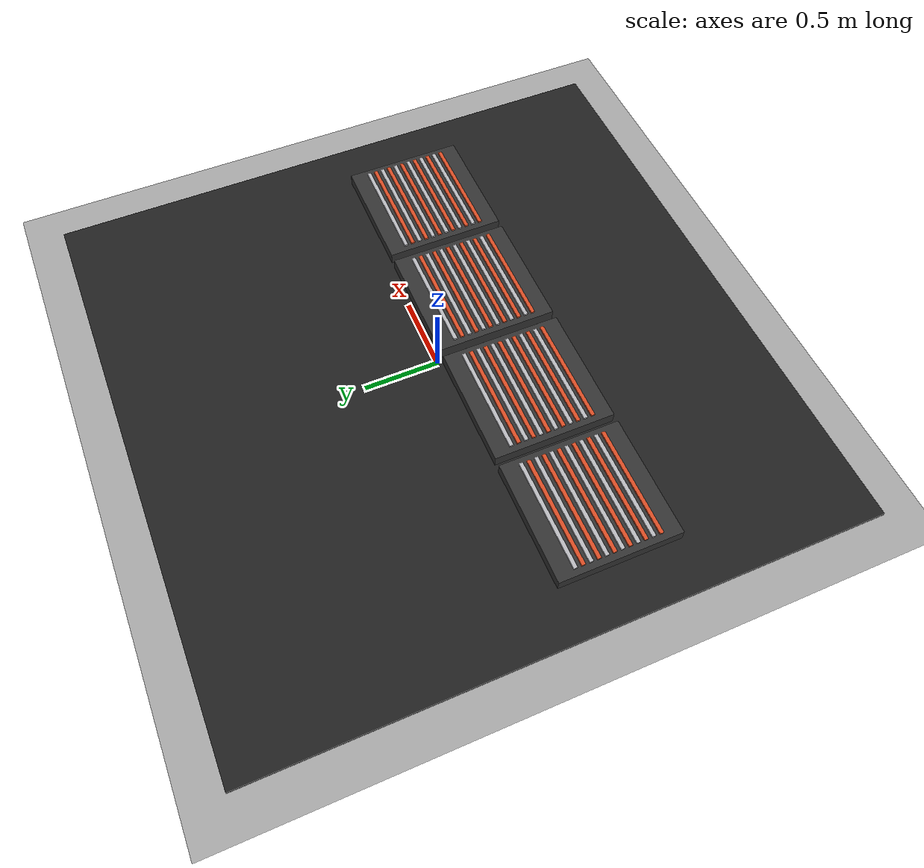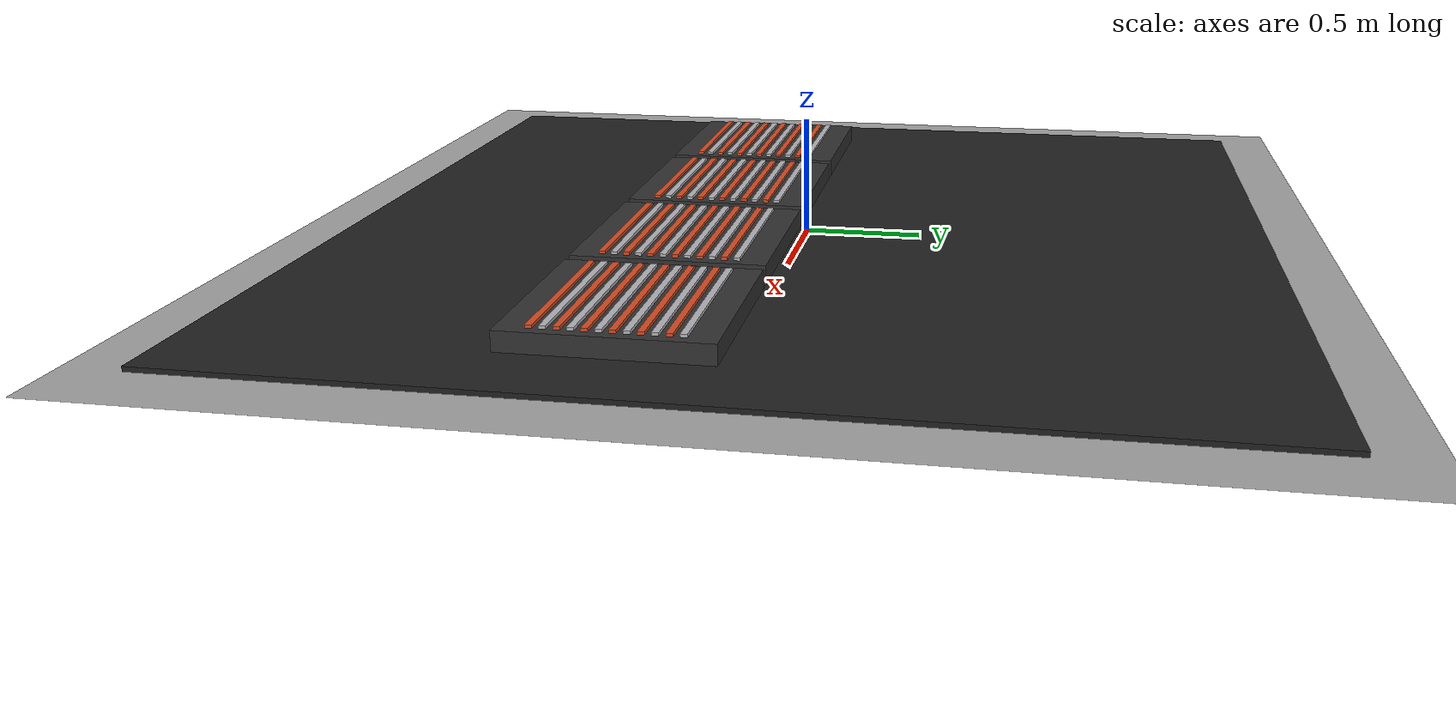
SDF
<sdf version="1.9">
 <world name="electrolysis_8_baths_world">
  <model name="ground_plane">
   <static>true</static>
   <link name="link">
    <collision name="collision">
     <geometry><plane><normal>0 0 1</normal><size>20 20</size></plane></geometry>
    </collision>
    <visual name="visual">
     <geometry><plane><normal>0 0 1</normal><size>20 20</size></plane></geometry>
     <material><ambient>0.65 0.65 0.65 1</ambient><diffuse>0.65 0.65 0.65 1</diffuse></material>
    </visual>
   </link>
  </model>
  <model name="polygon_floor">
   <static>true</static>
   <pose>0.0000 0.0000 0.0100 0 0 0</pose>
   <link name="link">
    <collision name="collision"><geometry><box><size>4.0000 4.0000 0.0200</size></box></geometry></collision>
    <visual name="visual">
     <geometry><box><size>4.0000 4.0000 0.0200</size></box></geometry>
     <material><ambient>0.13 0.13 0.13 1</ambient><diffuse>0.13 0.13 0.13 1</diffuse></material>
    </visual>
   </link>
  </model>
  <model name="bath_1">
   <static>true</static>
   <pose>-1.2750 -0.4250 0.0600 0 0 0</pose>
   <link name="link">
    <collision name="collision"><geometry><box><size>0.8000 0.8000 0.0800</size></box></geometry></collision>
    <visual name="visual">
     <geometry><box><size>0.8000 0.8000 0.0800</size></box></geometry>
     <material><ambient>0.20 0.20 0.20 1</ambient><diffuse>0.20 0.20 0.20 1</diffuse></material>
    </visual>
   </link>
  </model>
  <model name="bath_1_anode_01">
   <static>true</static>
   <pose>-1.2750 -0.7000 0.1000 0 0 0</pose>
   <link name="link">
    <collision name="collision"><geometry><box><size>0.7200 0.0250 0.0250</size></box></geometry></collision>
    <visual name="visual">
     <geometry><box><size>0.7200 0.0250 0.0250</size></box></geometry>
     <material><ambient>0.85 0.30 0.14 1</ambient><diffuse>0.85 0.30 0.14 1</diffuse></material>
    </visual>
   </link>
  </model>
  <model name="bath_1_cathode_02">
   <static>true</static>
   <pose>-1.2750 -0.6500 0.1000 0 0 0</pose>
   <link name="link">
    <collision name="collision"><geometry><box><size>0.7200 0.0250 0.0250</size></box></geometry></collision>
    <visual name="visual">
     <geometry><box><size>0.7200 0.0250 0.0250</size></box></geometry>
     <material><ambient>0.72 0.72 0.74 1</ambient><diffuse>0.72 0.72 0.74 1</diffuse></material>
    </visual>
   </link>
  </model>
  <model name="bath_1_anode_03">
   <static>true</static>
   <pose>-1.2750 -0.6000 0.1000 0 0 0</pose>
   <link name="link">
    <collision name="collision"><geometry><box><size>0.7200 0.0250 0.0250</size></box></geometry></collision>
    <visual name="visual">
     <geometry><box><size>0.7200 0.0250 0.0250</size></box></geometry>
     <material><ambient>0.85 0.30 0.14 1</ambient><diffuse>0.85 0.30 0.14 1</diffuse></material>
    </visual>
   </link>
  </model>
  <model name="bath_1_cathode_04">
   <static>true</static>
   <pose>-1.2750 -0.5500 0.1000 0 0 0</pose>
   <link name="link">
    <collision name="collision"><geometry><box><size>0.7200 0.0250 0.0250</size></box></geometry></collision>
    <visual name="visual">
     <geometry><box><size>0.7200 0.0250 0.0250</size></box></geometry>
     <material><ambient>0.72 0.72 0.74 1</ambient><diffuse>0.72 0.72 0.74 1</diffuse></material>
    </visual>
   </link>
  </model>
  <model name="bath_1_anode_05">
   <static>true</static>
   <pose>-1.2750 -0.5000 0.1000 0 0 0</pose>
   <link name="link">
    <collision name="collision"><geometry><box><size>0.7200 0.0250 0.0250</size></box></geometry></collision>
    <visual name="visual">
     <geometry><box><size>0.7200 0.0250 0.0250</size></box></geometry>
     <material><ambient>0.85 0.30 0.14 1</ambient><diffuse>0.85 0.30 0.14 1</diffuse></material>
    </visual>
   </link>
  </model>
  <model name="bath_1_cathode_06">
   <static>true</static>
   <pose>-1.2750 -0.4500 0.1000 0 0 0</pose>
   <link name="link">
    <collision name="collision"><geometry><box><size>0.7200 0.0250 0.0250</size></box></geometry></collision>
    <visual name="visual">
     <geometry><box><size>0.7200 0.0250 0.0250</size></box></geometry>
     <material><ambient>0.72 0.72 0.74 1</ambient><diffuse>0.72 0.72 0.74 1</diffuse></material>
    </visual>
   </link>
  </model>
  <model name="bath_1_anode_07">
   <static>true</static>
   <pose>-1.2750 -0.4000 0.1000 0 0 0</pose>
   <link name="link">
    <collision name="collision"><geometry><box><size>0.7200 0.0250 0.0250</size></box></geometry></collision>
    <visual name="visual">
     <geometry><box><size>0.7200 0.0250 0.0250</size></box></geometry>
     <material><ambient>0.85 0.30 0.14 1</ambient><diffuse>0.85 0.30 0.14 1</diffuse></material>
    </visual>
   </link>
  </model>
  <model name="bath_1_cathode_08">
   <static>true</static>
   <pose>-1.2750 -0.3500 0.1000 0 0 0</pose>
   <link name="link">
    <collision name="collision"><geometry><box><size>0.7200 0.0250 0.0250</size></box></geometry></collision>
    <visual name="visual">
     <geometry><box><size>0.7200 0.0250 0.0250</size></box></geometry>
     <material><ambient>0.72 0.72 0.74 1</ambient><diffuse>0.72 0.72 0.74 1</diffuse></material>
    </visual>
   </link>
  </model>
  <model name="bath_1_anode_09">
   <static>true</static>
   <pose>-1.2750 -0.3000 0.1000 0 0 0</pose>
   <link name="link">
    <collision name="collision"><geometry><box><size>0.7200 0.0250 0.0250</size></box></geometry></collision>
    <visual name="visual">
     <geometry><box><size>0.7200 0.0250 0.0250</size></box></geometry>
     <material><ambient>0.85 0.30 0.14 1</ambient><diffuse>0.85 0.30 0.14 1</diffuse></material>
    </visual>
   </link>
  </model>
  <model name="bath_1_cathode_10">
   <static>true</static>
   <pose>-1.2750 -0.2500 0.1000 0 0 0</pose>
   <link name="link">
    <collision name="collision"><geometry><box><size>0.7200 0.0250 0.0250</size></box></geometry></collision>
    <visual name="visual">
     <geometry><box><size>0.7200 0.0250 0.0250</size></box></geometry>
     <material><ambient>0.72 0.72 0.74 1</ambient><diffuse>0.72 0.72 0.74 1</diffuse></material>
    </visual>
   </link>
  </model>
  <model name="bath_1_anode_11">
   <static>true</static>
   <pose>-1.2750 -0.2000 0.1000 0 0 0</pose>
   <link name="link">
    <collision name="collision"><geometry><box><size>0.7200 0.0250 0.0250</size></box></geometry></collision>
    <visual name="visual">
     <geometry><box><size>0.7200 0.0250 0.0250</size></box></geometry>
     <material><ambient>0.85 0.30 0.14 1</ambient><diffuse>0.85 0.30 0.14 1</diffuse></material>
    </visual>
   </link>
  </model>
  <model name="bath_1_cathode_12">
   <static>true</static>
   <pose>-1.2750 -0.1500 0.1000 0 0 0</pose>
   <link name="link">
    <collision name="collision"><geometry><box><size>0.7200 0.0250 0.0250</size></box></geometry></collision>
    <visual name="visual">
     <geometry><box><size>0.7200 0.0250 0.0250</size></box></geometry>
     <material><ambient>0.72 0.72 0.74 1</ambient><diffuse>0.72 0.72 0.74 1</diffuse></material>
    </visual>
   </link>
  </model>
  <model name="bath_2">
   <static>true</static>
   <pose>-0.4250 -0.4250 0.0600 0 0 0</pose>
   <link name="link">
    <collision name="collision"><geometry><box><size>0.8000 0.8000 0.0800</size></box></geometry></collision>
    <visual name="visual">
     <geometry><box><size>0.8000 0.8000 0.0800</size></box></geometry>
     <material><ambient>0.20 0.20 0.20 1</ambient><diffuse>0.20 0.20 0.20 1</diffuse></material>
    </visual>
   </link>
  </model>
  <model name="bath_2_anode_01">
   <static>true</static>
   <pose>-0.4250 -0.7000 0.1000 0 0 0</pose>
   <link name="link">
    <collision name="collision"><geometry><box><size>0.7200 0.0250 0.0250</size></box></geometry></collision>
    <visual name="visual">
     <geometry><box><size>0.7200 0.0250 0.0250</size></box></geometry>
     <material><ambient>0.85 0.30 0.14 1</ambient><diffuse>0.85 0.30 0.14 1</diffuse></material>
    </visual>
   </link>
  </model>
  <model name="bath_2_cathode_02">
   <static>true</static>
   <pose>-0.4250 -0.6500 0.1000 0 0 0</pose>
   <link name="link">
    <collision name="collision"><geometry><box><size>0.7200 0.0250 0.0250</size></box></geometry></collision>
    <visual name="visual">
     <geometry><box><size>0.7200 0.0250 0.0250</size></box></geometry>
     <material><ambient>0.72 0.72 0.74 1</ambient><diffuse>0.72 0.72 0.74 1</diffuse></material>
    </visual>
   </link>
  </model>
  <model name="bath_2_anode_03">
   <static>true</static>
   <pose>-0.4250 -0.6000 0.1000 0 0 0</pose>
   <link name="link">
    <collision name="collision"><geometry><box><size>0.7200 0.0250 0.0250</size></box></geometry></collision>
    <visual name="visual">
     <geometry><box><size>0.7200 0.0250 0.0250</size></box></geometry>
     <material><ambient>0.85 0.30 0.14 1</ambient><diffuse>0.85 0.30 0.14 1</diffuse></material>
    </visual>
   </link>
  </model>
  <model name="bath_2_cathode_04">
   <static>true</static>
   <pose>-0.4250 -0.5500 0.1000 0 0 0</pose>
   <link name="link">
    <collision name="collision"><geometry><box><size>0.7200 0.0250 0.0250</size></box></geometry></collision>
    <visual name="visual">
     <geometry><box><size>0.7200 0.0250 0.0250</size></box></geometry>
     <material><ambient>0.72 0.72 0.74 1</ambient><diffuse>0.72 0.72 0.74 1</diffuse></material>
    </visual>
   </link>
  </model>
  <model name="bath_2_anode_05">
   <static>true</static>
   <pose>-0.4250 -0.5000 0.1000 0 0 0</pose>
   <link name="link">
    <collision name="collision"><geometry><box><size>0.7200 0.0250 0.0250</size></box></geometry></collision>
    <visual name="visual">
     <geometry><box><size>0.7200 0.0250 0.0250</size></box></geometry>
     <material><ambient>0.85 0.30 0.14 1</ambient><diffuse>0.85 0.30 0.14 1</diffuse></material>
    </visual>
   </link>
  </model>
  <model name="bath_2_cathode_06">
   <static>true</static>
   <pose>-0.4250 -0.4500 0.1000 0 0 0</pose>
   <link name="link">
    <collision name="collision"><geometry><box><size>0.7200 0.0250 0.0250</size></box></geometry></collision>
    <visual name="visual">
     <geometry><box><size>0.7200 0.0250 0.0250</size></box></geometry>
     <material><ambient>0.72 0.72 0.74 1</ambient><diffuse>0.72 0.72 0.74 1</diffuse></material>
    </visual>
   </link>
  </model>
  <model name="bath_2_anode_07">
   <static>true</static>
   <pose>-0.4250 -0.4000 0.1000 0 0 0</pose>
   <link name="link">
    <collision name="collision"><geometry><box><size>0.7200 0.0250 0.0250</size></box></geometry></collision>
    <visual name="visual">
     <geometry><box><size>0.7200 0.0250 0.0250</size></box></geometry>
     <material><ambient>0.85 0.30 0.14 1</ambient><diffuse>0.85 0.30 0.14 1</diffuse></material>
    </visual>
   </link>
  </model>
  <model name="bath_2_cathode_08">
   <static>true</static>
   <pose>-0.4250 -0.3500 0.1000 0 0 0</pose>
   <link name="link">
    <collision name="collision"><geometry><box><size>0.7200 0.0250 0.0250</size></box></geometry></collision>
    <visual name="visual">
     <geometry><box><size>0.7200 0.0250 0.0250</size></box></geometry>
     <material><ambient>0.72 0.72 0.74 1</ambient><diffuse>0.72 0.72 0.74 1</diffuse></material>
    </visual>
   </link>
  </model>
  <model name="bath_2_anode_09">
   <static>true</static>
   <pose>-0.4250 -0.3000 0.1000 0 0 0</pose>
   <link name="link">
    <collision name="collision"><geometry><box><size>0.7200 0.0250 0.0250</size></box></geometry></collision>
    <visual name="visual">
     <geometry><box><size>0.7200 0.0250 0.0250</size></box></geometry>
     <material><ambient>0.85 0.30 0.14 1</ambient><diffuse>0.85 0.30 0.14 1</diffuse></material>
    </visual>
   </link>
  </model>
  <model name="bath_2_cathode_10">
   <static>true</static>
   <pose>-0.4250 -0.2500 0.1000 0 0 0</pose>
   <link name="link">
    <collision name="collision"><geometry><box><size>0.7200 0.0250 0.0250</size></box></geometry></collision>
    <visual name="visual">
     <geometry><box><size>0.7200 0.0250 0.0250</size></box></geometry>
     <material><ambient>0.72 0.72 0.74 1</ambient><diffuse>0.72 0.72 0.74 1</diffuse></material>
    </visual>
   </link>
  </model>
  <model name="bath_2_anode_11">
   <static>true</static>
   <pose>-0.4250 -0.2000 0.1000 0 0 0</pose>
   <link name="link">
    <collision name="collision"><geometry><box><size>0.7200 0.0250 0.0250</size></box></geometry></collision>
    <visual name="visual">
     <geometry><box><size>0.7200 0.0250 0.0250</size></box></geometry>
     <material><ambient>0.85 0.30 0.14 1</ambient><diffuse>0.85 0.30 0.14 1</diffuse></material>
    </visual>
   </link>
  </model>
  <model name="bath_2_cathode_12">
   <static>true</static>
   <pose>-0.4250 -0.1500 0.1000 0 0 0</pose>
   <link name="link">
    <collision name="collision"><geometry><box><size>0.7200 0.0250 0.0250</size></box></geometry></collision>
    <visual name="visual">
     <geometry><box><size>0.7200 0.0250 0.0250</size></box></geometry>
     <material><ambient>0.72 0.72 0.74 1</ambient><diffuse>0.72 0.72 0.74 1</diffuse></material>
    </visual>
   </link>
  </model>
  <model name="bath_3">
   <static>true</static>
   <pose>0.4250 -0.4250 0.0600 0 0 0</pose>
   <link name="link">
    <collision name="collision"><geometry><box><size>0.8000 0.8000 0.0800</size></box></geometry></collision>
    <visual name="visual">
     <geometry><box><size>0.8000 0.8000 0.0800</size></box></geometry>
     <material><ambient>0.20 0.20 0.20 1</ambient><diffuse>0.20 0.20 0.20 1</diffuse></material>
    </visual>
   </link>
  </model>
  <model name="bath_3_anode_01">
   <static>true</static>
   <pose>0.4250 -0.7000 0.1000 0 0 0</pose>
   <link name="link">
    <collision name="collision"><geometry><box><size>0.7200 0.0250 0.0250</size></box></geometry></collision>
    <visual name="visual">
     <geometry><box><size>0.7200 0.0250 0.0250</size></box></geometry>
     <material><ambient>0.85 0.30 0.14 1</ambient><diffuse>0.85 0.30 0.14 1</diffuse></material>
    </visual>
   </link>
  </model>
  <model name="bath_3_cathode_02">
   <static>true</static>
   <pose>0.4250 -0.6500 0.1000 0 0 0</pose>
   <link name="link">
    <collision name="collision"><geometry><box><size>0.7200 0.0250 0.0250</size></box></geometry></collision>
    <visual name="visual">
     <geometry><box><size>0.7200 0.0250 0.0250</size></box></geometry>
     <material><ambient>0.72 0.72 0.74 1</ambient><diffuse>0.72 0.72 0.74 1</diffuse></material>
    </visual>
   </link>
  </model>
  <model name="bath_3_anode_03">
   <static>true</static>
   <pose>0.4250 -0.6000 0.1000 0 0 0</pose>
   <link name="link">
    <collision name="collision"><geometry><box><size>0.7200 0.0250 0.0250</size></box></geometry></collision>
    <visual name="visual">
     <geometry><box><size>0.7200 0.0250 0.0250</size></box></geometry>
     <material><ambient>0.85 0.30 0.14 1</ambient><diffuse>0.85 0.30 0.14 1</diffuse></material>
    </visual>
   </link>
  </model>
  <model name="bath_3_cathode_04">
   <static>true</static>
   <pose>0.4250 -0.5500 0.1000 0 0 0</pose>
   <link name="link">
    <collision name="collision"><geometry><box><size>0.7200 0.0250 0.0250</size></box></geometry></collision>
    <visual name="visual">
     <geometry><box><size>0.7200 0.0250 0.0250</size></box></geometry>
     <material><ambient>0.72 0.72 0.74 1</ambient><diffuse>0.72 0.72 0.74 1</diffuse></material>
    </visual>
   </link>
  </model>
  <model name="bath_3_anode_05">
   <static>true</static>
   <pose>0.4250 -0.5000 0.1000 0 0 0</pose>
   <link name="link">
    <collision name="collision"><geometry><box><size>0.7200 0.0250 0.0250</size></box></geometry></collision>
    <visual name="visual">
     <geometry><box><size>0.7200 0.0250 0.0250</size></box></geometry>
     <material><ambient>0.85 0.30 0.14 1</ambient><diffuse>0.85 0.30 0.14 1</diffuse></material>
    </visual>
   </link>
  </model>
  <model name="bath_3_cathode_06">
   <static>true</static>
   <pose>0.4250 -0.4500 0.1000 0 0 0</pose>
   <link name="link">
    <collision name="collision"><geometry><box><size>0.7200 0.0250 0.0250</size></box></geometry></collision>
    <visual name="visual">
     <geometry><box><size>0.7200 0.0250 0.0250</size></box></geometry>
     <material><ambient>0.72 0.72 0.74 1</ambient><diffuse>0.72 0.72 0.74 1</diffuse></material>
    </visual>
   </link>
  </model>
  <model name="bath_3_anode_07">
   <static>true</static>
   <pose>0.4250 -0.4000 0.1000 0 0 0</pose>
   <link name="link">
    <collision name="collision"><geometry><box><size>0.7200 0.0250 0.0250</size></box></geometry></collision>
    <visual name="visual">
     <geometry><box><size>0.7200 0.0250 0.0250</size></box></geometry>
     <material><ambient>0.85 0.30 0.14 1</ambient><diffuse>0.85 0.30 0.14 1</diffuse></material>
    </visual>
   </link>
  </model>
  <model name="bath_3_cathode_08">
   <static>true</static>
   <pose>0.4250 -0.3500 0.1000 0 0 0</pose>
   <link name="link">
    <collision name="collision"><geometry><box><size>0.7200 0.0250 0.0250</size></box></geometry></collision>
    <visual name="visual">
     <geometry><box><size>0.7200 0.0250 0.0250</size></box></geometry>
     <material><ambient>0.72 0.72 0.74 1</ambient><diffuse>0.72 0.72 0.74 1</diffuse></material>
    </visual>
   </link>
  </model>
  <model name="bath_3_anode_09">
   <static>true</static>
   <pose>0.4250 -0.3000 0.1000 0 0 0</pose>
   <link name="link">
    <collision name="collision"><geometry><box><size>0.7200 0.0250 0.0250</size></box></geometry></collision>
    <visual name="visual">
     <geometry><box><size>0.7200 0.0250 0.0250</size></box></geometry>
     <material><ambient>0.85 0.30 0.14 1</ambient><diffuse>0.85 0.30 0.14 1</diffuse></material>
    </visual>
   </link>
  </model>
  <model name="bath_3_cathode_10">
   <static>true</static>
   <pose>0.4250 -0.2500 0.1000 0 0 0</pose>
   <link name="link">
    <collision name="collision"><geometry><box><size>0.7200 0.0250 0.0250</size></box></geometry></collision>
    <visual name="visual">
     <geometry><box><size>0.7200 0.0250 0.0250</size></box></geometry>
     <material><ambient>0.72 0.72 0.74 1</ambient><diffuse>0.72 0.72 0.74 1</diffuse></material>
    </visual>
   </link>
  </model>
  <model name="bath_3_anode_11">
   <static>true</static>
   <pose>0.4250 -0.2000 0.1000 0 0 0</pose>
   <link name="link">
    <collision name="collision"><geometry><box><size>0.7200 0.0250 0.0250</size></box></geometry></collision>
    <visual name="visual">
     <geometry><box><size>0.7200 0.0250 0.0250</size></box></geometry>
     <material><ambient>0.85 0.30 0.14 1</ambient><diffuse>0.85 0.30 0.14 1</diffuse></material>
    </visual>
   </link>
  </model>
  <model name="bath_3_cathode_12">
   <static>true</static>
   <pose>0.4250 -0.1500 0.1000 0 0 0</pose>
   <link name="link">
    <collision name="collision"><geometry><box><size>0.7200 0.0250 0.0250</size></box></geometry></collision>
    <visual name="visual">
     <geometry><box><size>0.7200 0.0250 0.0250</size></box></geometry>
     <material><ambient>0.72 0.72 0.74 1</ambient><diffuse>0.72 0.72 0.74 1</diffuse></material>
    </visual>
   </link>
  </model>
  <model name="bath_4">
   <static>true</static>
   <pose>1.2750 -0.4250 0.0600 0 0 0</pose>
   <link name="link">
    <collision name="collision"><geometry><box><size>0.8000 0.8000 0.0800</size></box></geometry></collision>
    <visual name="visual">
     <geometry><box><size>0.8000 0.8000 0.0800</size></box></geometry>
     <material><ambient>0.20 0.20 0.20 1</ambient><diffuse>0.20 0.20 0.20 1</diffuse></material>
    </visual>
   </link>
  </model>
  <model name="bath_4_anode_01">
   <static>true</static>
   <pose>1.2750 -0.7000 0.1000 0 0 0</pose>
   <link name="link">
    <collision name="collision"><geometry><box><size>0.7200 0.0250 0.0250</size></box></geometry></collision>
    <visual name="visual">
     <geometry><box><size>0.7200 0.0250 0.0250</size></box></geometry>
     <material><ambient>0.85 0.30 0.14 1</ambient><diffuse>0.85 0.30 0.14 1</diffuse></material>
    </visual>
   </link>
  </model>
  <model name="bath_4_cathode_02">
   <static>true</static>
   <pose>1.2750 -0.6500 0.1000 0 0 0</pose>
   <link name="link">
    <collision name="collision"><geometry><box><size>0.7200 0.0250 0.0250</size></box></geometry></collision>
    <visual name="visual">
     <geometry><box><size>0.7200 0.0250 0.0250</size></box></geometry>
     <material><ambient>0.72 0.72 0.74 1</ambient><diffuse>0.72 0.72 0.74 1</diffuse></material>
    </visual>
   </link>
  </model>
  <model name="bath_4_anode_03">
   <static>true</static>
   <pose>1.2750 -0.6000 0.1000 0 0 0</pose>
   <link name="link">
    <collision name="collision"><geometry><box><size>0.7200 0.0250 0.0250</size></box></geometry></collision>
    <visual name="visual">
     <geometry><box><size>0.7200 0.0250 0.0250</size></box></geometry>
     <material><ambient>0.85 0.30 0.14 1</ambient><diffuse>0.85 0.30 0.14 1</diffuse></material>
    </visual>
   </link>
  </model>
  <model name="bath_4_cathode_04">
   <static>true</static>
   <pose>1.2750 -0.5500 0.1000 0 0 0</pose>
   <link name="link">
    <collision name="collision"><geometry><box><size>0.7200 0.0250 0.0250</size></box></geometry></collision>
    <visual name="visual">
     <geometry><box><size>0.7200 0.0250 0.0250</size></box></geometry>
     <material><ambient>0.72 0.72 0.74 1</ambient><diffuse>0.72 0.72 0.74 1</diffuse></material>
    </visual>
   </link>
  </model>
  <model name="bath_4_anode_05">
   <static>true</static>
   <pose>1.2750 -0.5000 0.1000 0 0 0</pose>
   <link name="link">
    <collision name="collision"><geometry><box><size>0.7200 0.0250 0.0250</size></box></geometry></collision>
    <visual name="visual">
     <geometry><box><size>0.7200 0.0250 0.0250</size></box></geometry>
     <material><ambient>0.85 0.30 0.14 1</ambient><diffuse>0.85 0.30 0.14 1</diffuse></material>
    </visual>
   </link>
  </model>
  <model name="bath_4_cathode_06">
   <static>true</static>
   <pose>1.2750 -0.4500 0.1000 0 0 0</pose>
   <link name="link">
    <collision name="collision"><geometry><box><size>0.7200 0.0250 0.0250</size></box></geometry></collision>
    <visual name="visual">
     <geometry><box><size>0.7200 0.0250 0.0250</size></box></geometry>
     <material><ambient>0.72 0.72 0.74 1</ambient><diffuse>0.72 0.72 0.74 1</diffuse></material>
    </visual>
   </link>
  </model>
  <model name="bath_4_anode_07">
   <static>true</static>
   <pose>1.2750 -0.4000 0.1000 0 0 0</pose>
   <link name="link">
    <collision name="collision"><geometry><box><size>0.7200 0.0250 0.0250</size></box></geometry></collision>
    <visual name="visual">
     <geometry><box><size>0.7200 0.0250 0.0250</size></box></geometry>
     <material><ambient>0.85 0.30 0.14 1</ambient><diffuse>0.85 0.30 0.14 1</diffuse></material>
    </visual>
   </link>
  </model>
  <model name="bath_4_cathode_08">
   <static>true</static>
   <pose>1.2750 -0.3500 0.1000 0 0 0</pose>
   <link name="link">
    <collision name="collision"><geometry><box><size>0.7200 0.0250 0.0250</size></box></geometry></collision>
    <visual name="visual">
     <geometry><box><size>0.7200 0.0250 0.0250</size></box></geometry>
     <material><ambient>0.72 0.72 0.74 1</ambient><diffuse>0.72 0.72 0.74 1</diffuse></material>
    </visual>
   </link>
  </model>
  <model name="bath_4_anode_09">
   <static>true</static>
   <pose>1.2750 -0.3000 0.1000 0 0 0</pose>
   <link name="link">
    <collision name="collision"><geometry><box><size>0.7200 0.0250 0.0250</size></box></geometry></collision>
    <visual name="visual">
     <geometry><box><size>0.7200 0.0250 0.0250</size></box></geometry>
     <material><ambient>0.85 0.30 0.14 1</ambient><diffuse>0.85 0.30 0.14 1</diffuse></material>
    </visual>
   </link>
  </model>
  <model name="bath_4_cathode_10">
   <static>true</static>
   <pose>1.2750 -0.2500 0.1000 0 0 0</pose>
   <link name="link">
    <collision name="collision"><geometry><box><size>0.7200 0.0250 0.0250</size></box></geometry></collision>
    <visual name="visual">
     <geometry><box><size>0.7200 0.0250 0.0250</size></box></geometry>
     <material><ambient>0.72 0.72 0.74 1</ambient><diffuse>0.72 0.72 0.74 1</diffuse></material>
    </visual>
   </link>
  </model>
  <model name="bath_4_anode_11">
   <static>true</static>
   <pose>1.2750 -0.2000 0.1000 0 0 0</pose>
   <link name="link">
    <collision name="collision"><geometry><box><size>0.7200 0.0250 0.0250</size></box></geometry></collision>
    <visual name="visual">
     <geometry><box><size>0.7200 0.0250 0.0250</size></box></geometry>
     <material><ambient>0.85 0.30 0.14 1</ambient><diffuse>0.85 0.30 0.14 1</diffuse></material>
    </visual>
   </link>
  </model>
  <model name="bath_4_cathode_12">
   <static>true</static>
   <pose>1.2750 -0.1500 0.1000 0 0 0</pose>
   <link name="link">
    <collision name="collision"><geometry><box><size>0.7200 0.0250 0.0250</size></box></geometry></collision>
    <visual name="visual">
     <geometry><box><size>0.7200 0.0250 0.0250</size></box></geometry>
     <material><ambient>0.72 0.72 0.74 1</ambient><diffuse>0.72 0.72 0.74 1</diffuse></material>
    </visual>
   </link>
  </model>
 </world>
</sdf>
